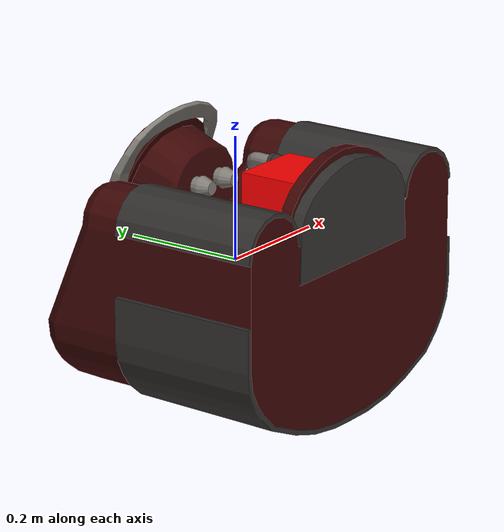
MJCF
<mujoco model="coffee_machine_28">
  <compiler autolimits="true" boundmass="0.01" angle="radian"/>
  <default>
    <default class="/">
      <default class="__VISUAL_MJT__">
        <geom contype="0" conaffinity="0" group="0"/>
      </default>
      <default class="__STRUCTURAL_MJT__">
        <geom contype="8" conaffinity="15" group="4" friction="0.90000000000000002 0.90000000000000002 0.001" solref="0.025000000000000001 1" solimp="0.998 0.998 0.001"/>
      </default>
      <default class="__DYNAMIC_MJT__">
        <geom contype="1" conaffinity="15" group="4" friction="0.90000000000000002 0.90000000000000002 0.001" solref="0.025000000000000001 1" solimp="0.998 0.998 0.001"/>
      </default>
    </default>
  </default>
  <asset>
    <material name="material_coffee_machine_backup_mat" class="/" specular="0.5" shininess="0.5" rgba="0.5 0.5 0.5 1"/>
    <material name="material_Coffee_Machine_Readout_Mat_Off" class="/" specular="0.5" shininess="0.5" rgba="0 0 0 1"/>
    <texture name="Coffee_Machine_Decal_Mat" type="2d" file="Coffee_Machine_Decal_AlbedoTransparency.png"/>
    <material name="material_Coffee_Machine_Decal_Mat" class="/" texture="Coffee_Machine_Decal_Mat" specular="0.5" shininess="0.5" rgba="1 1 1 1"/>
    <texture name="Coffee_Machine_Metal_Mat" type="2d" file="MetalBumpy_AlbedoTransparency.png"/>
    <material name="material_Coffee_Machine_Metal_Mat" class="/" texture="Coffee_Machine_Metal_Mat" specular="0.5" shininess="0.5" rgba="0.66176469999999998 0.66176469999999998 0.66176469999999998 1"/>
    <texture name="Coffee_Machine_Secondary3_Color_Mat" type="2d" file="BrushedIron_AlbedoTransparency.png"/>
    <material name="material_Coffee_Machine_Secondary3_Color_Mat" class="/" texture="Coffee_Machine_Secondary3_Color_Mat" specular="0.5" shininess="0.5" rgba="0.2573529 0.2573529 0.2573529 1"/>
    <texture name="Coffee_Machine_Primary3_Color_Mat" type="2d" file="BumpyPlastic_Albedo.png"/>
    <material name="material_Coffee_Machine_Primary3_Color_Mat" class="/" texture="Coffee_Machine_Primary3_Color_Mat" specular="0.5" shininess="0.5" rgba="0.31617650000000003 0.030222740000000001 0.030222740000000001 1"/>
    <mesh name="coffee_machine_28_coffee_machine_18_0" class="/" file="coffee_machine_28_coffee_machine_18/coffee_machine_28_coffee_machine_18_0.obj" scale="1 1 1"/>
    <mesh name="coffee_machine_28_coffee_machine_18_1" class="/" file="coffee_machine_28_coffee_machine_18/coffee_machine_28_coffee_machine_18_1.obj" scale="1 1 1"/>
    <mesh name="coffee_machine_28_coffee_machine_18_2" class="/" file="coffee_machine_28_coffee_machine_18/coffee_machine_28_coffee_machine_18_2.obj" scale="1 1 1"/>
    <mesh name="coffee_machine_28_coffee_machine_18_3" class="/" file="coffee_machine_28_coffee_machine_18/coffee_machine_28_coffee_machine_18_3.obj" scale="1 1 1"/>
    <mesh name="coffee_machine_28_coffee_machine_18_4" class="/" file="coffee_machine_28_coffee_machine_18/coffee_machine_28_coffee_machine_18_4.obj" scale="1 1 1"/>
    <mesh name="coffee_machine_28_coffee_machine_18_5" class="/" file="coffee_machine_28_coffee_machine_18/coffee_machine_28_coffee_machine_18_5.obj" scale="1 1 1"/>
  </asset>
  <worldbody>
    <body name="coffee_machine_28">
      <joint name="coffee_machine_28_free" class="/" type="free" pos="0 0 0" axis="0 0 1" stiffness="0" range="0 0" armature="0" damping="0.10000000000000001" frictionloss="0"/>
      <body name="coffee_machine_28_coffee_machine_18" pos="-0 -0.22323999999999999 -0.02332" quat="1 0 0 0">
        <geom name="coffee_machine_28_coffee_machine_18_0" class="__VISUAL_MJT__" type="mesh" material="material_coffee_machine_backup_mat" shellinertia="true" mesh="coffee_machine_28_coffee_machine_18_0"/>
        <geom name="coffee_machine_28_coffee_machine_18_1" class="__VISUAL_MJT__" type="mesh" material="material_Coffee_Machine_Readout_Mat_Off" shellinertia="false" mesh="coffee_machine_28_coffee_machine_18_1"/>
        <geom name="coffee_machine_28_coffee_machine_18_2" class="__VISUAL_MJT__" type="mesh" material="material_Coffee_Machine_Decal_Mat" shellinertia="true" mesh="coffee_machine_28_coffee_machine_18_2"/>
        <geom name="coffee_machine_28_coffee_machine_18_3" class="__VISUAL_MJT__" type="mesh" material="material_Coffee_Machine_Metal_Mat" shellinertia="false" mesh="coffee_machine_28_coffee_machine_18_3"/>
        <geom name="coffee_machine_28_coffee_machine_18_4" class="__VISUAL_MJT__" type="mesh" material="material_Coffee_Machine_Secondary3_Color_Mat" shellinertia="false" mesh="coffee_machine_28_coffee_machine_18_4"/>
        <geom name="coffee_machine_28_coffee_machine_18_5" class="__VISUAL_MJT__" type="mesh" material="material_Coffee_Machine_Primary3_Color_Mat" shellinertia="false" mesh="coffee_machine_28_coffee_machine_18_5"/>
        <site name="coffee_machine_28_Receptacle_0" class="/" type="box" rgba="1 0 0 1" size="0.062059946358203888 0.062220156192779541 0.043096795678138733" pos="-0 0.10332015156745911 0.14884127676486969" quat="1 0 0 0"/>
        <geom name="coffee_machine_28_PrimitiveCollider_0" class="__DYNAMIC_MJT__" type="box" size="0.27100193500518799 0.22106707096099854 0.14336490631103516" rgba="0 1 0 1" pos="-0 0.22106707096099854 -0.050884246826171875" quat="1 0 0 0"/>
        <geom name="coffee_machine_28_PrimitiveCollider_1" class="__DYNAMIC_MJT__" type="box" size="0.063785485923290253 0.17253625392913818 0.14336490631103516" rgba="0 1 0 1" pos="-0.20403772592544556 0.17253625392913818 0.04971574991941452" quat="1 0 0 0"/>
        <geom name="coffee_machine_28_PrimitiveCollider_2" class="__DYNAMIC_MJT__" type="box" size="0.063785485923290253 0.17253625392913818 0.14336490631103516" rgba="0 1 0 1" pos="0.20706227421760559 0.17253625392913818 0.049715518951416016" quat="1 0 0 0"/>
        <geom name="coffee_machine_28_PrimitiveCollider_3" class="__DYNAMIC_MJT__" type="box" size="0.11959778517484665 0.059008479118347168 0.11062605679035187" rgba="0 1 0 1" pos="0.0005667712539434433 0.36035391688346863 0.11598522961139679" quat="0.99108380079269409 0.13324011862277985 0 0"/>
        <geom name="coffee_machine_28_PrimitiveCollider_4" class="__DYNAMIC_MJT__" type="box" size="0.14166742563247681 0.020572781562805176 0.14336490631103516" rgba="0 1 0 1" pos="-0 0.020572781562805176 0.09751574695110321" quat="1 0 0 0"/>
      </body>
    </body>
  </worldbody>
</mujoco>
